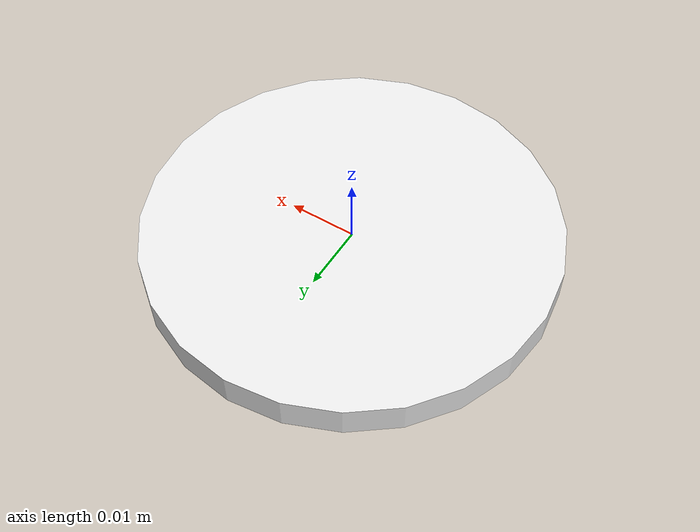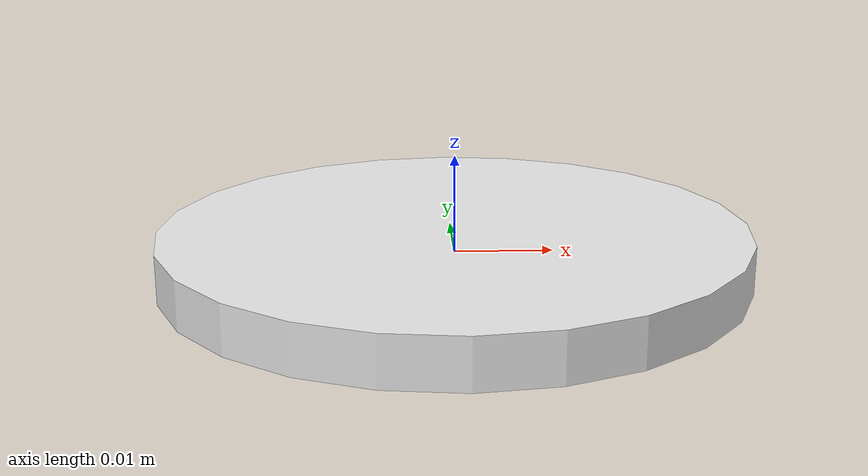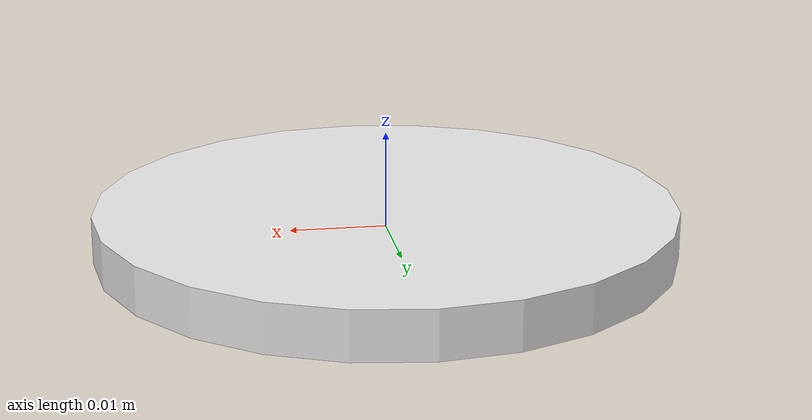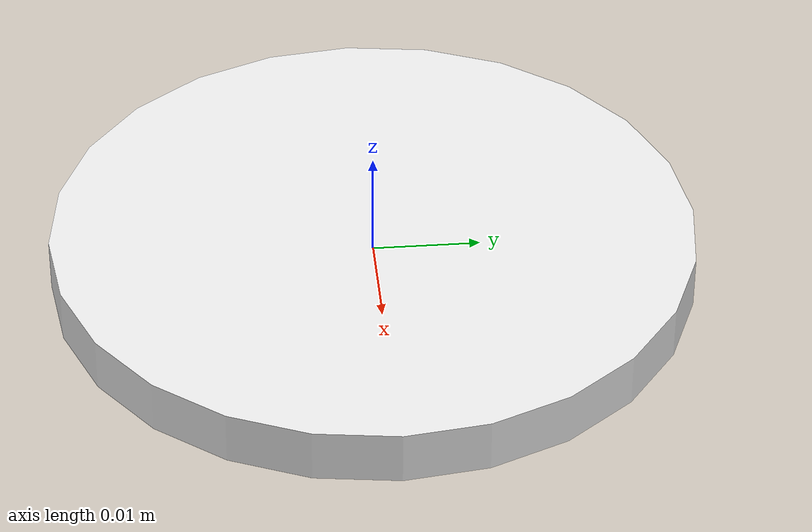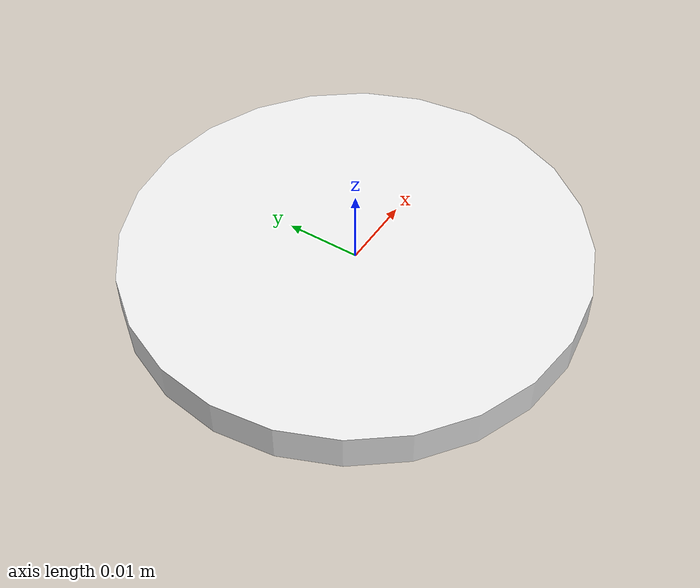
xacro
<?xml version="1.0" ?>
<robot name="urdf_helix" xmlns:xacro="http://www.ros.org/wiki/xacro">

<!-- URDF Representing the Helix arm -->

<xacro:arg name="mesh_url" default="package://helix_description" />

<link name="arm_base">
  <visual>
    <origin xyz="0 0 0" rpy="0 0 0"/>
      <geometry>
        <cylinder length="0.005" radius="0.03"/>
      </geometry>
    <material name="white"/>
  </visual>
</link>

<!-- Links for visualisation using floating discs, their transforms can be set manually -->

<!-- First segment -->

<joint name="seg1_mid_joint_1" type="floating">
  <parent link="arm_base"/>
  <child link="seg1_mid_link_1"/>
</joint>

<link name="seg1_mid_link_1">
  <visual>
    <origin xyz="0 0 0" rpy="0 0 0"/>
      <geometry>
        <cylinder length="0.005" radius="0.03"/>
      </geometry>
    <material name="clear"/>
  </visual>
</link>

<joint name="seg1_mid_joint_2" type="floating">
  <parent link="arm_base"/>
  <child link="seg1_mid_link_2"/>
</joint>

<link name="seg1_mid_link_2">
  <visual>
    <origin xyz="0 0 0" rpy="0 0 0"/>
      <geometry>
        <cylinder length="0.005" radius="0.03"/>
      </geometry>
    <material name="clear"/>
  </visual>
</link>

<joint name="seg1_mid_joint_3" type="floating">
  <parent link="arm_base"/>
  <child link="seg1_mid_link_3"/>
</joint>

<link name="seg1_mid_link_3">
  <visual>
    <origin xyz="0 0 0" rpy="0 0 0"/>
      <geometry>
        <cylinder length="0.005" radius="0.03"/>
      </geometry>
    <material name="clear"/>
  </visual>
</link>

<joint name="seg1_end_joint" type="floating">
  <parent link="arm_base"/>
  <child link="seg1_end_link"/>
</joint>

<link name="seg1_end_link">
  <visual>
    <origin xyz="0 0 0" rpy="0 0 0"/>
      <geometry>
        <cylinder length="0.005" radius="0.03"/>
      </geometry>
    <material name="white"/>
  </visual>
</link>

<!-- Second segment -->

<joint name="seg2_mid_joint_1" type="floating">
  <parent link="arm_base"/>
  <child link="seg2_mid_link_1"/>
</joint>

<link name="seg2_mid_link_1">
  <visual>
    <origin xyz="0 0 0" rpy="0 0 0"/>
      <geometry>
        <cylinder length="0.005" radius="0.03"/>
      </geometry>
    <material name="clear"/>
  </visual>
</link>

<joint name="seg2_mid_joint_2" type="floating">
  <parent link="arm_base"/>
  <child link="seg2_mid_link_2"/>
</joint>

<link name="seg2_mid_link_2">
  <visual>
    <origin xyz="0 0 0" rpy="0 0 0"/>
      <geometry>
        <cylinder length="0.005" radius="0.03"/>
      </geometry>
    <material name="clear"/>
  </visual>
</link>

<joint name="seg2_mid_joint_3" type="floating">
  <parent link="arm_base"/>
  <child link="seg2_mid_link_3"/>
</joint>

<link name="seg2_mid_link_3">
  <visual>
    <origin xyz="0 0 0" rpy="0 0 0"/>
      <geometry>
        <cylinder length="0.005" radius="0.03"/>
      </geometry>
    <material name="clear"/>
  </visual>
</link>

<joint name="seg2_mid_joint_4" type="floating">
  <parent link="arm_base"/>
  <child link="seg2_mid_link_4"/>
</joint>

<link name="seg2_mid_link_4">
  <visual>
    <origin xyz="0 0 0" rpy="0 0 0"/>
      <geometry>
        <cylinder length="0.005" radius="0.03"/>
      </geometry>
    <material name="clear"/>
  </visual>
</link>

<joint name="seg2_mid_joint_5" type="floating">
  <parent link="arm_base"/>
  <child link="seg2_mid_link_5"/>
</joint>

<link name="seg2_mid_link_5">
  <visual>
    <origin xyz="0 0 0" rpy="0 0 0"/>
      <geometry>
        <cylinder length="0.005" radius="0.03"/>
      </geometry>
    <material name="clear"/>
  </visual>
</link>

<joint name="seg2_mid_joint_6" type="floating">
  <parent link="arm_base"/>
  <child link="seg2_mid_link_6"/>
</joint>

<link name="seg2_mid_link_6">
  <visual>
    <origin xyz="0 0 0" rpy="0 0 0"/>
      <geometry>
        <cylinder length="0.005" radius="0.03"/>
      </geometry>
    <material name="clear"/>
  </visual>
</link>

<joint name="seg2_mid_joint_7" type="floating">
  <parent link="arm_base"/>
  <child link="seg2_mid_link_7"/>
</joint>

<link name="seg2_mid_link_7">
  <visual>
    <origin xyz="0 0 0" rpy="0 0 0"/>
      <geometry>
        <cylinder length="0.005" radius="0.03"/>
      </geometry>
    <material name="clear"/>
  </visual>
</link>

<joint name="seg2_end_joint" type="floating">
  <parent link="arm_base"/>
  <child link="seg2_end_link"/>
</joint>

<link name="seg2_end_link">
  <visual>
    <origin xyz="0 0 0" rpy="0 0 0"/>
      <geometry>
        <cylinder length="0.005" radius="0.03"/>
      </geometry>
    <material name="white"/>
  </visual>
</link>

<!-- Third segment -->

<joint name="seg3_mid_joint_1" type="floating">
  <parent link="arm_base"/>
  <child link="seg3_mid_link_1"/>
</joint>

<link name="seg3_mid_link_1">
  <visual>
    <origin xyz="0 0 0" rpy="0 0 0"/>
      <geometry>
        <cylinder length="0.005" radius="0.03"/>
      </geometry>
    <material name="clear"/>
  </visual>
</link>

<joint name="seg3_mid_joint_2" type="floating">
  <parent link="arm_base"/>
  <child link="seg3_mid_link_2"/>
</joint>

<link name="seg3_mid_link_2">
  <visual>
    <origin xyz="0 0 0" rpy="0 0 0"/>
      <geometry>
        <cylinder length="0.005" radius="0.03"/>
      </geometry>
    <material name="clear"/>
  </visual>
</link>

<joint name="seg3_mid_joint_3" type="floating">
  <parent link="arm_base"/>
  <child link="seg3_mid_link_3"/>
</joint>

<link name="seg3_mid_link_3">
  <visual>
    <origin xyz="0 0 0" rpy="0 0 0"/>
      <geometry>
        <cylinder length="0.005" radius="0.03"/>
      </geometry>
    <material name="clear"/>
  </visual>
</link>

<joint name="seg3_mid_joint_4" type="floating">
  <parent link="arm_base"/>
  <child link="seg3_mid_link_4"/>
</joint>

<link name="seg3_mid_link_4">
  <visual>
    <origin xyz="0 0 0" rpy="0 0 0"/>
      <geometry>
        <cylinder length="0.005" radius="0.03"/>
      </geometry>
    <material name="clear"/>
  </visual>
</link>

<joint name="seg3_mid_joint_5" type="floating">
  <parent link="arm_base"/>
  <child link="seg3_mid_link_5"/>
</joint>

<link name="seg3_mid_link_5">
  <visual>
    <origin xyz="0 0 0" rpy="0 0 0"/>
      <geometry>
        <cylinder length="0.005" radius="0.03"/>
      </geometry>
    <material name="clear"/>
  </visual>
</link>

<joint name="seg3_mid_joint_6" type="floating">
  <parent link="arm_base"/>
  <child link="seg3_mid_link_6"/>
</joint>

<link name="seg3_mid_link_6">
  <visual>
    <origin xyz="0 0 0" rpy="0 0 0"/>
      <geometry>
        <cylinder length="0.005" radius="0.03"/>
      </geometry>
    <material name="clear"/>
  </visual>
</link>

<joint name="seg3_mid_joint_7" type="floating">
  <parent link="arm_base"/>
  <child link="seg3_mid_link_7"/>
</joint>

<link name="seg3_mid_link_7">
  <visual>
    <origin xyz="0 0 0" rpy="0 0 0"/>
      <geometry>
        <cylinder length="0.005" radius="0.03"/>
      </geometry>
    <material name="clear"/>
  </visual>
</link>

<joint name="seg3_end_joint" type="floating">
  <parent link="arm_base"/>
  <child link="seg3_end_link"/>
</joint>

<link name="seg3_end_link">
  <visual>
    <origin xyz="0 0 0" rpy="0 0 0"/>
      <geometry>
        <cylinder length="0.005" radius="0.03"/>
      </geometry>
    <material name="white"/>
  </visual>
</link>

</robot>
